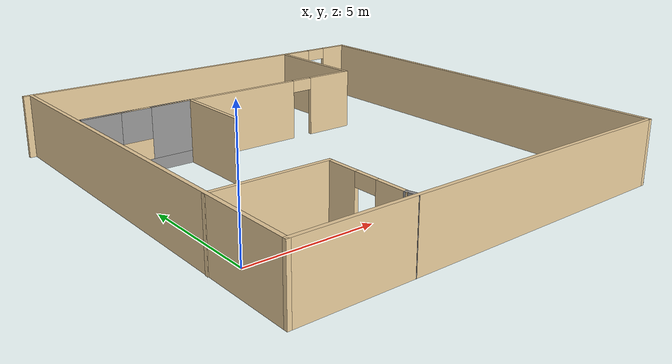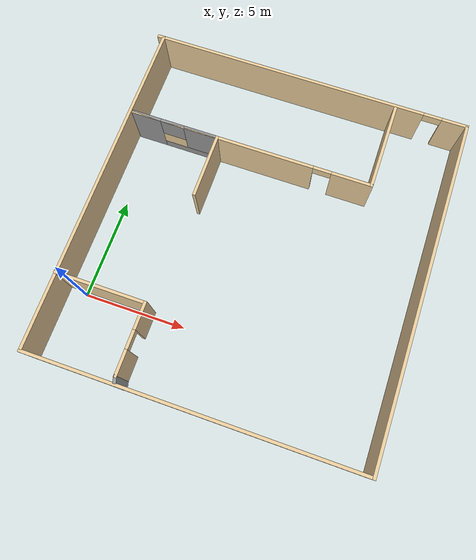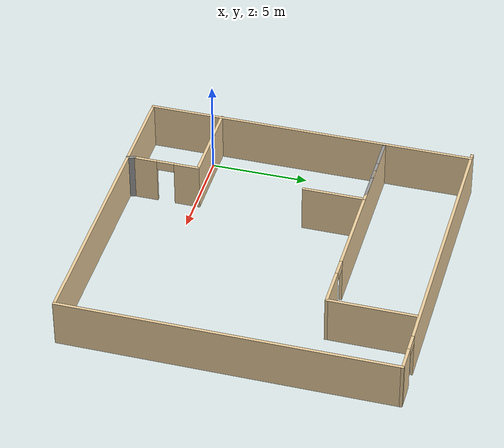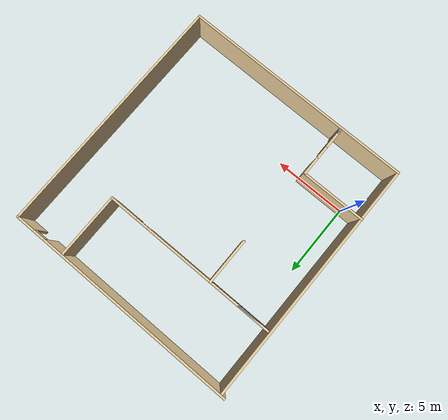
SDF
<?xml version='1.0'?>
<sdf version='1.7'>
  <model name='ecuador_rest'>
    <pose>6.86 4.92056 0 0 -0 0</pose>
    <link name='Wall_0'>
      <collision name='Wall_0_Collision'>
        <geometry>
          <box>
            <size>17 0.15 2.5</size>
          </box>
        </geometry>
        <pose>0 0 1.25 0 -0 0</pose>
      </collision>
      <visual name='Wall_0_Visual'>
        <pose>0 0 1.25 0 -0 0</pose>
        <geometry>
          <box>
            <size>17 0.15 2.5</size>
          </box>
        </geometry>
        <material>
          <script>
            <uri>file://media/materials/scripts/gazebo.material</uri>
            <name>Gazebo/Grey</name>
          </script>
          <ambient>0.921569 0.807843 0.615686 1</ambient>
        </material>
        <meta>
          <layer>0</layer>
        </meta>
      </visual>
      <pose>-7.8 0.004437 0 0 -0 1.5708</pose>
    </link>
    <link name='Wall_10'>
      <pose>-5.43757 3.94479 0 0 -0 0</pose>
      <visual name='Wall_10_Visual_0'>
        <pose>-1.49149 0 1.25 0 -0 0</pose>
        <geometry>
          <box>
            <size>1.51702 0.15 2.5</size>
          </box>
        </geometry>
        <material>
          <script>
            <uri>file://media/materials/scripts/gazebo.material</uri>
            <name>Gazebo/Grey</name>
          </script>
          <ambient>1 1 1 1</ambient>
        </material>
        <meta>
          <layer>0</layer>
        </meta>
      </visual>
      <collision name='Wall_10_Collision_0'>
        <geometry>
          <box>
            <size>1.51702 0.15 2.5</size>
          </box>
        </geometry>
        <pose>-1.49149 0 1.25 0 -0 0</pose>
      </collision>
      <visual name='Wall_10_Visual_1'>
        <pose>0.758508 0 0.25 0 -0 0</pose>
        <geometry>
          <box>
            <size>2.98298 0.15 0.5</size>
          </box>
        </geometry>
        <material>
          <script>
            <uri>file://media/materials/scripts/gazebo.material</uri>
            <name>Gazebo/Grey</name>
          </script>
          <ambient>1 1 1 1</ambient>
        </material>
        <meta>
          <layer>0</layer>
        </meta>
      </visual>
      <collision name='Wall_10_Collision_1'>
        <geometry>
          <box>
            <size>2.98298 0.15 0.5</size>
          </box>
        </geometry>
        <pose>0.758508 0 0.25 0 -0 0</pose>
      </collision>
      <visual name='Wall_10_Visual_2'>
        <pose>1.35851 0 1.5 0 -0 0</pose>
        <geometry>
          <box>
            <size>1.78298 0.15 2</size>
          </box>
        </geometry>
        <material>
          <script>
            <uri>file://media/materials/scripts/gazebo.material</uri>
            <name>Gazebo/Grey</name>
          </script>
          <ambient>1 1 1 1</ambient>
        </material>
        <meta>
          <layer>0</layer>
        </meta>
      </visual>
      <collision name='Wall_10_Collision_2'>
        <geometry>
          <box>
            <size>1.78298 0.15 2</size>
          </box>
        </geometry>
        <pose>1.35851 0 1.5 0 -0 0</pose>
      </collision>
      <visual name='Wall_10_Visual_3'>
        <pose>-0.132983 0 1.9 0 -0 0</pose>
        <geometry>
          <box>
            <size>1.2 0.15 1.2</size>
          </box>
        </geometry>
        <material>
          <script>
            <uri>file://media/materials/scripts/gazebo.material</uri>
            <name>Gazebo/Grey</name>
          </script>
          <ambient>1 1 1 1</ambient>
        </material>
        <meta>
          <layer>0</layer>
        </meta>
      </visual>
      <collision name='Wall_10_Collision_3'>
        <geometry>
          <box>
            <size>1.2 0.15 1.2</size>
          </box>
        </geometry>
        <pose>-0.132983 0 1.9 0 -0 0</pose>
      </collision>
    </link>
    <link name='Wall_11'>
      <collision name='Wall_11_Collision'>
        <geometry>
          <box>
            <size>3.25 0.15 2.5</size>
          </box>
        </geometry>
        <pose>0 0 1.25 0 -0 0</pose>
      </collision>
      <visual name='Wall_11_Visual'>
        <pose>0 0 1.25 0 -0 0</pose>
        <geometry>
          <box>
            <size>3.25 0.15 2.5</size>
          </box>
        </geometry>
        <material>
          <script>
            <uri>file://media/materials/scripts/gazebo.material</uri>
            <name>Gazebo/Grey</name>
          </script>
          <ambient>0.921569 0.807843 0.615686 1</ambient>
        </material>
        <meta>
          <layer>0</layer>
        </meta>
      </visual>
      <pose>-3.26257 2.39479 0 0 -0 -1.5708</pose>
    </link>
    <link name='Wall_13'>
      <collision name='Wall_13_Collision'>
        <geometry>
          <box>
            <size>4.5 0.15 2.5</size>
          </box>
        </geometry>
        <pose>0 0 1.25 0 -0 0</pose>
      </collision>
      <visual name='Wall_13_Visual'>
        <pose>0 0 1.25 0 -0 0</pose>
        <geometry>
          <box>
            <size>4.5 0.15 2.5</size>
          </box>
        </geometry>
        <material>
          <script>
            <uri>file://media/materials/scripts/gazebo.material</uri>
            <name>Gazebo/Grey</name>
          </script>
          <ambient>0.921569 0.807843 0.615686 1</ambient>
        </material>
        <meta>
          <layer>0</layer>
        </meta>
      </visual>
      <pose>-5.6493 -4.72451 0 0 -0 0</pose>
    </link>
    <link name='Wall_14'>
      <pose>-3.4743 -6.39951 0 0 -0 -1.5708</pose>
      <visual name='Wall_14_Visual_0'>
        <pose>-1.08277 0 1.25 0 -0 0</pose>
        <geometry>
          <box>
            <size>1.33445 0.15 2.5</size>
          </box>
        </geometry>
        <material>
          <script>
            <uri>file://media/materials/scripts/gazebo.material</uri>
            <name>Gazebo/Grey</name>
          </script>
          <ambient>0.921569 0.807843 0.615686 1</ambient>
        </material>
        <meta>
          <layer>0</layer>
        </meta>
      </visual>
      <collision name='Wall_14_Collision_0'>
        <geometry>
          <box>
            <size>1.33445 0.15 2.5</size>
          </box>
        </geometry>
        <pose>-1.08277 0 1.25 0 -0 0</pose>
      </collision>
      <visual name='Wall_14_Visual_1'>
        <pose>1.11723 0 1.25 0 -0 0</pose>
        <geometry>
          <box>
            <size>1.26555 0.15 2.5</size>
          </box>
        </geometry>
        <material>
          <script>
            <uri>file://media/materials/scripts/gazebo.material</uri>
            <name>Gazebo/Grey</name>
          </script>
          <ambient>0.921569 0.807843 0.615686 1</ambient>
        </material>
        <meta>
          <layer>0</layer>
        </meta>
      </visual>
      <collision name='Wall_14_Collision_1'>
        <geometry>
          <box>
            <size>1.26555 0.15 2.5</size>
          </box>
        </geometry>
        <pose>1.11723 0 1.25 0 -0 0</pose>
      </collision>
      <visual name='Wall_14_Visual_2'>
        <pose>0.034452 0 2.25 0 -0 0</pose>
        <geometry>
          <box>
            <size>0.9 0.15 0.5</size>
          </box>
        </geometry>
        <material>
          <script>
            <uri>file://media/materials/scripts/gazebo.material</uri>
            <name>Gazebo/Grey</name>
          </script>
          <ambient>0.921569 0.807843 0.615686 1</ambient>
        </material>
        <meta>
          <layer>0</layer>
        </meta>
      </visual>
      <collision name='Wall_14_Collision_2'>
        <geometry>
          <box>
            <size>0.9 0.15 0.5</size>
          </box>
        </geometry>
        <pose>0.034452 0 2.25 0 -0 0</pose>
      </collision>
    </link>
    <link name='Wall_15'>
      <collision name='Wall_15_Collision'>
        <geometry>
          <box>
            <size>0.5 0.15 2.5</size>
          </box>
        </geometry>
        <pose>0 0 1.25 0 -0 0</pose>
      </collision>
      <visual name='Wall_15_Visual'>
        <pose>0 0 1.25 0 -0 0</pose>
        <geometry>
          <box>
            <size>0.5 0.15 2.5</size>
          </box>
        </geometry>
        <material>
          <script>
            <uri>file://media/materials/scripts/gazebo.material</uri>
            <name>Gazebo/Grey</name>
          </script>
          <ambient>1 1 1 1</ambient>
        </material>
        <meta>
          <layer>0</layer>
        </meta>
      </visual>
      <pose>-3.429 -8.24354 0 0 -0 -1.309</pose>
    </link>
    <link name='Wall_2'>
      <collision name='Wall_2_Collision'>
        <geometry>
          <box>
            <size>16 0.15 2.5</size>
          </box>
        </geometry>
        <pose>0 0 1.25 0 -0 0</pose>
      </collision>
      <visual name='Wall_2_Visual'>
        <pose>0 0 1.25 0 -0 0</pose>
        <geometry>
          <box>
            <size>16 0.15 2.5</size>
          </box>
        </geometry>
        <material>
          <script>
            <uri>file://media/materials/scripts/gazebo.material</uri>
            <name>Gazebo/Grey</name>
          </script>
          <ambient>0.921569 0.807843 0.615686 1</ambient>
        </material>
        <meta>
          <layer>0</layer>
        </meta>
      </visual>
      <pose>0.125 -8.42056 0 0 -0 0</pose>
    </link>
    <link name='Wall_4'>
      <collision name='Wall_4_Collision'>
        <geometry>
          <box>
            <size>17 0.15 2.5</size>
          </box>
        </geometry>
        <pose>0 0 1.25 0 -0 0</pose>
      </collision>
      <visual name='Wall_4_Visual'>
        <pose>0 0 1.25 0 -0 0</pose>
        <geometry>
          <box>
            <size>17 0.15 2.5</size>
          </box>
        </geometry>
        <material>
          <script>
            <uri>file://media/materials/scripts/gazebo.material</uri>
            <name>Gazebo/Grey</name>
          </script>
          <ambient>0.921569 0.807843 0.615686 1</ambient>
        </material>
        <meta>
          <layer>0</layer>
        </meta>
      </visual>
      <pose>8.05 0.004437 0 0 -0 1.5708</pose>
    </link>
    <link name='Wall_6'>
      <pose>-0 8.42944 0 0 -0 3.14159</pose>
      <visual name='Wall_6_Visual_0'>
        <pose>-7.45728 0 1.25 0 -0 0</pose>
        <geometry>
          <box>
            <size>1.33543 0.15 2.5</size>
          </box>
        </geometry>
        <material>
          <script>
            <uri>file://media/materials/scripts/gazebo.material</uri>
            <name>Gazebo/Grey</name>
          </script>
          <ambient>0.921569 0.807843 0.615686 1</ambient>
        </material>
        <meta>
          <layer>0</layer>
        </meta>
      </visual>
      <collision name='Wall_6_Collision_0'>
        <geometry>
          <box>
            <size>1.33543 0.15 2.5</size>
          </box>
        </geometry>
        <pose>-7.45728 0 1.25 0 -0 0</pose>
      </collision>
      <visual name='Wall_6_Visual_1'>
        <pose>1.11772 0 1.25 0 -0 0</pose>
        <geometry>
          <box>
            <size>14.0146 0.15 2.5</size>
          </box>
        </geometry>
        <material>
          <script>
            <uri>file://media/materials/scripts/gazebo.material</uri>
            <name>Gazebo/Grey</name>
          </script>
          <ambient>0.921569 0.807843 0.615686 1</ambient>
        </material>
        <meta>
          <layer>0</layer>
        </meta>
      </visual>
      <collision name='Wall_6_Collision_1'>
        <geometry>
          <box>
            <size>14.0146 0.15 2.5</size>
          </box>
        </geometry>
        <pose>1.11772 0 1.25 0 -0 0</pose>
      </collision>
      <visual name='Wall_6_Visual_2'>
        <pose>-6.33957 0 2.25 0 -0 0</pose>
        <geometry>
          <box>
            <size>0.9 0.15 0.5</size>
          </box>
        </geometry>
        <material>
          <script>
            <uri>file://media/materials/scripts/gazebo.material</uri>
            <name>Gazebo/Grey</name>
          </script>
          <ambient>0.921569 0.807843 0.615686 1</ambient>
        </material>
        <meta>
          <layer>0</layer>
        </meta>
      </visual>
      <collision name='Wall_6_Collision_2'>
        <geometry>
          <box>
            <size>0.9 0.15 0.5</size>
          </box>
        </geometry>
        <pose>-6.33957 0 2.25 0 -0 0</pose>
      </collision>
    </link>
    <link name='Wall_8'>
      <collision name='Wall_8_Collision'>
        <geometry>
          <box>
            <size>4.5 0.15 2.5</size>
          </box>
        </geometry>
        <pose>0 0 1.25 0 -0 0</pose>
      </collision>
      <visual name='Wall_8_Visual'>
        <pose>0 0 1.25 0 -0 0</pose>
        <geometry>
          <box>
            <size>4.5 0.15 2.5</size>
          </box>
        </geometry>
        <material>
          <script>
            <uri>file://media/materials/scripts/gazebo.material</uri>
            <name>Gazebo/Grey</name>
          </script>
          <ambient>0.921569 0.807843 0.615686 1</ambient>
        </material>
        <meta>
          <layer>0</layer>
        </meta>
      </visual>
      <pose>4.48743 6.11979 0 0 -0 -1.5708</pose>
    </link>
    <link name='Wall_9'>
      <pose>-1.56257 3.94479 0 0 -0 3.14159</pose>
      <visual name='Wall_9_Visual_0'>
        <pose>-5.09847 0 1.25 0 -0 0</pose>
        <geometry>
          <box>
            <size>2.05306 0.15 2.5</size>
          </box>
        </geometry>
        <material>
          <script>
            <uri>file://media/materials/scripts/gazebo.material</uri>
            <name>Gazebo/Grey</name>
          </script>
          <ambient>0.921569 0.807843 0.615686 1</ambient>
        </material>
        <meta>
          <layer>0</layer>
        </meta>
      </visual>
      <collision name='Wall_9_Collision_0'>
        <geometry>
          <box>
            <size>2.05306 0.15 2.5</size>
          </box>
        </geometry>
        <pose>-5.09847 0 1.25 0 -0 0</pose>
      </collision>
      <visual name='Wall_9_Visual_1'>
        <pose>1.47653 0 1.25 0 -0 0</pose>
        <geometry>
          <box>
            <size>9.29694 0.15 2.5</size>
          </box>
        </geometry>
        <material>
          <script>
            <uri>file://media/materials/scripts/gazebo.material</uri>
            <name>Gazebo/Grey</name>
          </script>
          <ambient>0.921569 0.807843 0.615686 1</ambient>
        </material>
        <meta>
          <layer>0</layer>
        </meta>
      </visual>
      <collision name='Wall_9_Collision_1'>
        <geometry>
          <box>
            <size>9.29694 0.15 2.5</size>
          </box>
        </geometry>
        <pose>1.47653 0 1.25 0 -0 0</pose>
      </collision>
      <visual name='Wall_9_Visual_2'>
        <pose>-3.62194 0 2.25 0 -0 0</pose>
        <geometry>
          <box>
            <size>0.9 0.15 0.5</size>
          </box>
        </geometry>
        <material>
          <script>
            <uri>file://media/materials/scripts/gazebo.material</uri>
            <name>Gazebo/Grey</name>
          </script>
          <ambient>0.921569 0.807843 0.615686 1</ambient>
        </material>
        <meta>
          <layer>0</layer>
        </meta>
      </visual>
      <collision name='Wall_9_Collision_2'>
        <geometry>
          <box>
            <size>0.9 0.15 0.5</size>
          </box>
        </geometry>
        <pose>-3.62194 0 2.25 0 -0 0</pose>
      </collision>
    </link>
    <static>1</static>
  </model>
</sdf>
